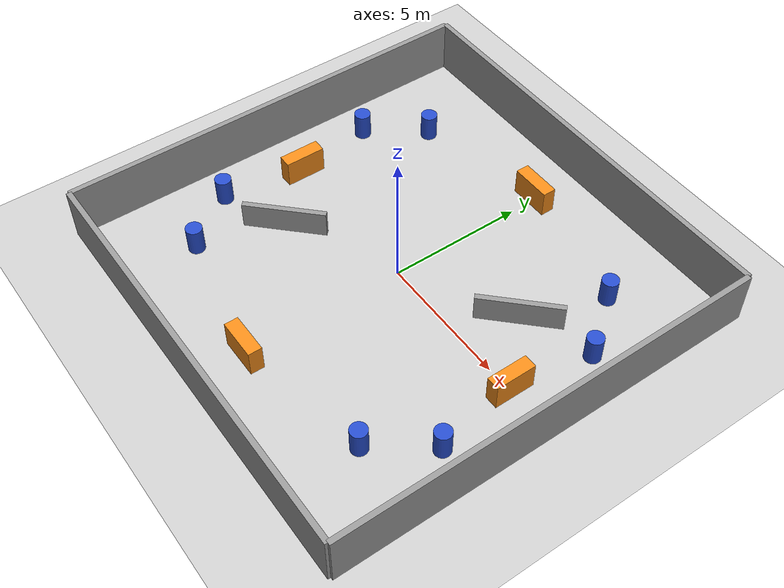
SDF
<sdf version='1.6'>
  <world name='default'>

    <model name='ground_plane'>
      <static>1</static>
      <link name='link'>
        <collision name='collision'>
          <geometry><plane><normal>0 0 1</normal><size>100 100</size></plane></geometry>
          <surface><friction><ode><mu>100</mu><mu2>50</mu2></ode><torsional><ode/></torsional></friction><contact><ode/></contact><bounce/></surface>
          <max_contacts>10</max_contacts>
        </collision>
        <visual name='visual'>
          <cast_shadows>0</cast_shadows>
          <geometry><plane><normal>0 0 1</normal><size>100 100</size></plane></geometry>
          <material><script><uri>file://media/materials/scripts/gazebo.material</uri><name>Gazebo/Grey</name></script></material>
        </visual>
        <self_collide>0</self_collide><enable_wind>0</enable_wind><kinematic>0</kinematic>
      </link>
    </model>

    <light name='sun' type='directional'>
      <cast_shadows>1</cast_shadows>
      <pose>0 0 10 0 -0 0</pose>
      <diffuse>0.8 0.8 0.8 1</diffuse>
      <specular>0.2 0.2 0.2 1</specular>
      <attenuation><range>1000</range><constant>0.9</constant><linear>0.01</linear><quadratic>0.001</quadratic></attenuation>
      <direction>-0.5 0.1 -0.9</direction>
      <spot><inner_angle>0</inner_angle><outer_angle>0</outer_angle><falloff>0</falloff></spot>
    </light>

    <light name='user_point_light_0' type='point'>
      <pose>0 0 3 0 -0 0</pose>
      <diffuse>0.5 0.5 0.5 1</diffuse><specular>0.1 0.1 0.1 1</specular>
      <attenuation><range>20</range><constant>0.5</constant><linear>0.01</linear><quadratic>0.001</quadratic></attenuation>
      <cast_shadows>0</cast_shadows><direction>0 0 -1</direction>
    </light>

    <scene>
      <shadows>0</shadows>
      <ambient>0.4 0.4 0.4 1</ambient>
      <background>0.7 0.7 0.7 1</background>
    </scene>

    <gui fullscreen='0'>
      <camera name='user_camera'>
        <pose>0 0 40 0 1.5707 0</pose>
        <view_controller>orbit</view_controller>
        <projection_type>perspective</projection_type>
      </camera>
    </gui>

    <physics type='ode'>
      <real_time_update_rate>1000</real_time_update_rate>
      <max_step_size>0.001</max_step_size>
      <real_time_factor>1</real_time_factor>
      <ode>
        <solver><type>quick</type><iters>150</iters><precon_iters>0</precon_iters><sor>1.4</sor><use_dynamic_moi_rescaling>1</use_dynamic_moi_rescaling></solver>
        <constraints><cfm>1e-05</cfm><erp>0.2</erp><contact_max_correcting_vel>2000</contact_max_correcting_vel><contact_surface_layer>0.01</contact_surface_layer></constraints>
      </ode>
    </physics>

    <gravity>0 0 -9.8</gravity>
    <magnetic_field>6e-06 2.3e-05 -4.2e-05</magnetic_field>
    <atmosphere type='adiabatic'/>
    <audio><device>default</device></audio>
    <wind/>
    <spherical_coordinates>
      <surface_model>EARTH_WGS84</surface_model>
      <latitude_deg>0</latitude_deg><longitude_deg>0</longitude_deg>
      <elevation>0</elevation><heading_deg>0</heading_deg>
    </spherical_coordinates>

    <!-- MURS EXTERIEURS — forment une salle de 16x16 m            -->
    <!-- Robot spawné à (0,0), murs à ±8 m                        -->

    <!-- Mur Nord -->
    <model name='wall_north'>
      <static>1</static>
      <pose>0 8 1 0 0 0</pose>
      <link name='link'>
        <collision name='collision'><geometry><box><size>16 0.2 2</size></box></geometry><max_contacts>10</max_contacts></collision>
        <visual name='visual'><geometry><box><size>16 0.2 2</size></box></geometry>
          <material><script><name>Gazebo/Grey</name><uri>file://media/materials/scripts/gazebo.material</uri></script></material>
        </visual>
      </link>
    </model>

    <!-- Mur Sud -->
    <model name='wall_south'>
      <static>1</static>
      <pose>0 -8 1 0 0 0</pose>
      <link name='link'>
        <collision name='collision'><geometry><box><size>16 0.2 2</size></box></geometry><max_contacts>10</max_contacts></collision>
        <visual name='visual'><geometry><box><size>16 0.2 2</size></box></geometry>
          <material><script><name>Gazebo/Grey</name><uri>file://media/materials/scripts/gazebo.material</uri></script></material>
        </visual>
      </link>
    </model>

    <!-- Mur Est -->
    <model name='wall_east'>
      <static>1</static>
      <pose>8 0 1 0 0 0</pose>
      <link name='link'>
        <collision name='collision'><geometry><box><size>0.2 16 2</size></box></geometry><max_contacts>10</max_contacts></collision>
        <visual name='visual'><geometry><box><size>0.2 16 2</size></box></geometry>
          <material><script><name>Gazebo/Grey</name><uri>file://media/materials/scripts/gazebo.material</uri></script></material>
        </visual>
      </link>
    </model>

    <!-- Mur Ouest -->
    <model name='wall_west'>
      <static>1</static>
      <pose>-8 0 1 0 0 0</pose>
      <link name='link'>
        <collision name='collision'><geometry><box><size>0.2 16 2</size></box></geometry><max_contacts>10</max_contacts></collision>
        <visual name='visual'><geometry><box><size>0.2 16 2</size></box></geometry>
          <material><script><name>Gazebo/Grey</name><uri>file://media/materials/scripts/gazebo.material</uri></script></material>
        </visual>
      </link>
    </model>

    <!-- OBSTACLES INTERIEURS                                        -->
    <!-- Tous à >4.5 m du centre pour laisser le robot démarrer    -->
    <!-- Espacés de >1.5 m entre eux pour que le robot passe       -->

    <!-- Colonne NE -->
    <model name='col_ne_1'>
      <static>1</static><pose>5 5 0.5 0 0 0</pose>
      <link name='link'>
        <collision name='collision'><geometry><cylinder><radius>0.3</radius><length>1</length></cylinder></geometry><max_contacts>10</max_contacts></collision>
        <visual name='visual'><geometry><cylinder><radius>0.3</radius><length>1</length></cylinder></geometry>
          <material><script><name>Gazebo/Blue</name><uri>file://media/materials/scripts/gazebo.material</uri></script></material></visual>
      </link>
    </model>

    <model name='col_ne_2'>
      <static>1</static><pose>6.5 3 0.5 0 0 0</pose>
      <link name='link'>
        <collision name='collision'><geometry><cylinder><radius>0.3</radius><length>1</length></cylinder></geometry><max_contacts>10</max_contacts></collision>
        <visual name='visual'><geometry><cylinder><radius>0.3</radius><length>1</length></cylinder></geometry>
          <material><script><name>Gazebo/Blue</name><uri>file://media/materials/scripts/gazebo.material</uri></script></material></visual>
      </link>
    </model>

    <!-- Colonne NW -->
    <model name='col_nw_1'>
      <static>1</static><pose>-5 5 0.5 0 0 0</pose>
      <link name='link'>
        <collision name='collision'><geometry><cylinder><radius>0.3</radius><length>1</length></cylinder></geometry><max_contacts>10</max_contacts></collision>
        <visual name='visual'><geometry><cylinder><radius>0.3</radius><length>1</length></cylinder></geometry>
          <material><script><name>Gazebo/Blue</name><uri>file://media/materials/scripts/gazebo.material</uri></script></material></visual>
      </link>
    </model>

    <model name='col_nw_2'>
      <static>1</static><pose>-6.5 3 0.5 0 0 0</pose>
      <link name='link'>
        <collision name='collision'><geometry><cylinder><radius>0.3</radius><length>1</length></cylinder></geometry><max_contacts>10</max_contacts></collision>
        <visual name='visual'><geometry><cylinder><radius>0.3</radius><length>1</length></cylinder></geometry>
          <material><script><name>Gazebo/Blue</name><uri>file://media/materials/scripts/gazebo.material</uri></script></material></visual>
      </link>
    </model>

    <!-- Colonne SE -->
    <model name='col_se_1'>
      <static>1</static><pose>5 -5 0.5 0 0 0</pose>
      <link name='link'>
        <collision name='collision'><geometry><cylinder><radius>0.3</radius><length>1</length></cylinder></geometry><max_contacts>10</max_contacts></collision>
        <visual name='visual'><geometry><cylinder><radius>0.3</radius><length>1</length></cylinder></geometry>
          <material><script><name>Gazebo/Blue</name><uri>file://media/materials/scripts/gazebo.material</uri></script></material></visual>
      </link>
    </model>

    <model name='col_se_2'>
      <static>1</static><pose>6.5 -3 0.5 0 0 0</pose>
      <link name='link'>
        <collision name='collision'><geometry><cylinder><radius>0.3</radius><length>1</length></cylinder></geometry><max_contacts>10</max_contacts></collision>
        <visual name='visual'><geometry><cylinder><radius>0.3</radius><length>1</length></cylinder></geometry>
          <material><script><name>Gazebo/Blue</name><uri>file://media/materials/scripts/gazebo.material</uri></script></material></visual>
      </link>
    </model>

    <!-- Colonne SW -->
    <model name='col_sw_1'>
      <static>1</static><pose>-5 -5 0.5 0 0 0</pose>
      <link name='link'>
        <collision name='collision'><geometry><cylinder><radius>0.3</radius><length>1</length></cylinder></geometry><max_contacts>10</max_contacts></collision>
        <visual name='visual'><geometry><cylinder><radius>0.3</radius><length>1</length></cylinder></geometry>
          <material><script><name>Gazebo/Blue</name><uri>file://media/materials/scripts/gazebo.material</uri></script></material></visual>
      </link>
    </model>

    <model name='col_sw_2'>
      <static>1</static><pose>-6.5 -3 0.5 0 0 0</pose>
      <link name='link'>
        <collision name='collision'><geometry><cylinder><radius>0.3</radius><length>1</length></cylinder></geometry><max_contacts>10</max_contacts></collision>
        <visual name='visual'><geometry><cylinder><radius>0.3</radius><length>1</length></cylinder></geometry>
          <material><script><name>Gazebo/Blue</name><uri>file://media/materials/scripts/gazebo.material</uri></script></material></visual>
      </link>
    </model>

    <!-- Boîtes intermédiaires N/S/E/W à 5-6 m -->
    <model name='box_n'>
      <static>1</static><pose>0 6 0.5 0 0 0</pose>
      <link name='link'>
        <collision name='collision'><geometry><box><size>1.5 0.5 1</size></box></geometry><max_contacts>10</max_contacts></collision>
        <visual name='visual'><geometry><box><size>1.5 0.5 1</size></box></geometry>
          <material><script><name>Gazebo/Orange</name><uri>file://media/materials/scripts/gazebo.material</uri></script></material></visual>
      </link>
    </model>

    <model name='box_s'>
      <static>1</static><pose>0 -6 0.5 0 0 0</pose>
      <link name='link'>
        <collision name='collision'><geometry><box><size>1.5 0.5 1</size></box></geometry><max_contacts>10</max_contacts></collision>
        <visual name='visual'><geometry><box><size>1.5 0.5 1</size></box></geometry>
          <material><script><name>Gazebo/Orange</name><uri>file://media/materials/scripts/gazebo.material</uri></script></material></visual>
      </link>
    </model>

    <model name='box_e'>
      <static>1</static><pose>6 0 0.5 0 0 0</pose>
      <link name='link'>
        <collision name='collision'><geometry><box><size>0.5 1.5 1</size></box></geometry><max_contacts>10</max_contacts></collision>
        <visual name='visual'><geometry><box><size>0.5 1.5 1</size></box></geometry>
          <material><script><name>Gazebo/Orange</name><uri>file://media/materials/scripts/gazebo.material</uri></script></material></visual>
      </link>
    </model>

    <model name='box_w'>
      <static>1</static><pose>-6 0 0.5 0 0 0</pose>
      <link name='link'>
        <collision name='collision'><geometry><box><size>0.5 1.5 1</size></box></geometry><max_contacts>10</max_contacts></collision>
        <visual name='visual'><geometry><box><size>0.5 1.5 1</size></box></geometry>
          <material><script><name>Gazebo/Orange</name><uri>file://media/materials/scripts/gazebo.material</uri></script></material></visual>
      </link>
    </model>

    <!-- Petit mur intérieur NE — crée un couloir à explorer -->
    <model name='inner_wall_ne'>
      <static>1</static><pose>4 2 0.5 0 0 0.785</pose>
      <link name='link'>
        <collision name='collision'><geometry><box><size>3 0.2 1</size></box></geometry><max_contacts>10</max_contacts></collision>
        <visual name='visual'><geometry><box><size>3 0.2 1</size></box></geometry>
          <material><script><name>Gazebo/Grey</name><uri>file://media/materials/scripts/gazebo.material</uri></script></material></visual>
      </link>
    </model>

    <!-- Petit mur intérieur SW -->
    <model name='inner_wall_sw'>
      <static>1</static><pose>-4 -2 0.5 0 0 0.785</pose>
      <link name='link'>
        <collision name='collision'><geometry><box><size>3 0.2 1</size></box></geometry><max_contacts>10</max_contacts></collision>
        <visual name='visual'><geometry><box><size>3 0.2 1</size></box></geometry>
          <material><script><name>Gazebo/Grey</name><uri>file://media/materials/scripts/gazebo.material</uri></script></material></visual>
      </link>
    </model>

  </world>
</sdf>
